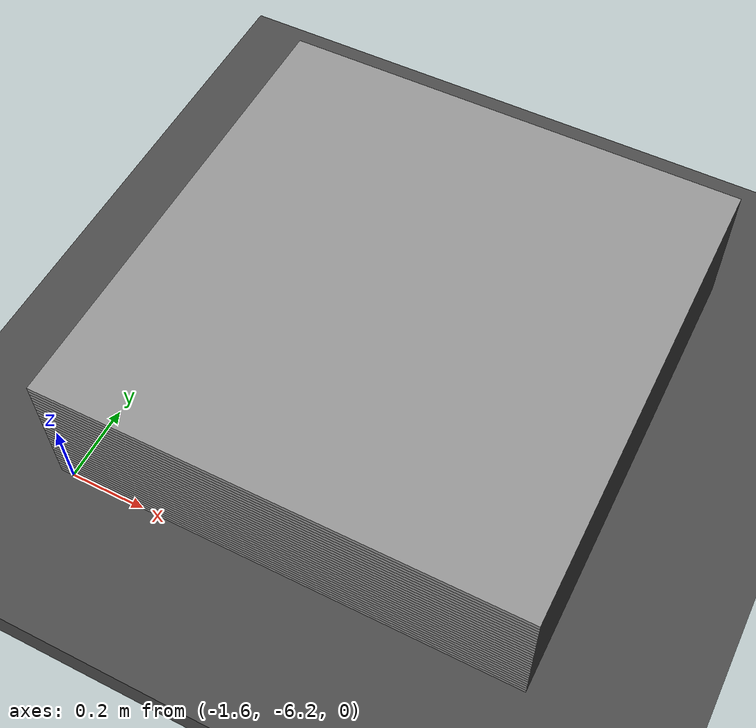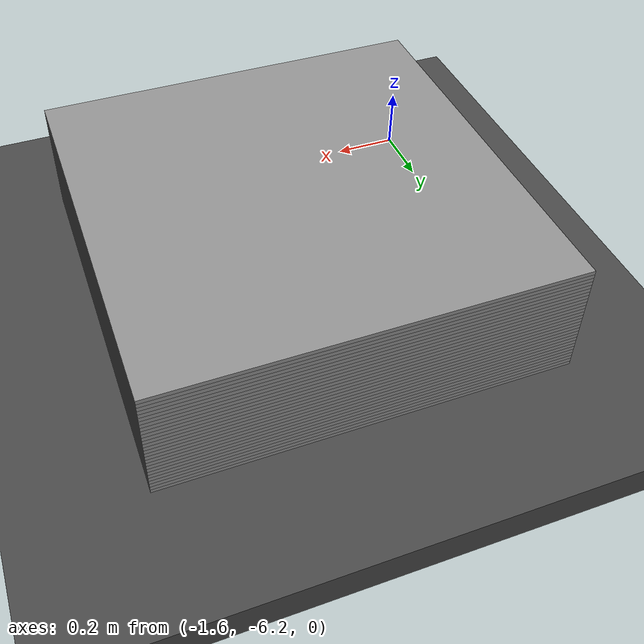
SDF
<sdf version="1.6">
 <world name="default">
  <light name="sun" type="directional">
   <pose>0 0 10 0 -0 0</pose>
   <diffuse>0.8 0.8 0.8 1</diffuse>
   <specular>0.2 0.2 0.2 1</specular>
   <attenuation>
    <range>1000</range>
    <constant>0.9</constant>
    <linear>0.01</linear>
    <quadratic>0.001</quadratic>
   </attenuation>
   <direction>-0.5 0.1 -0.9</direction>
  </light>
  <model name="ground_plane">
   <static>1</static>
   <link name="link">
    <collision name="collision">
     <geometry><plane><normal>0 0 1</normal><size>100 100</size></plane></geometry>
     <surface><friction><ode><mu>100</mu><mu2>50</mu2></ode></friction></surface>
    </collision>
    <visual name="visual">
     <cast_shadows>0</cast_shadows>
     <geometry><plane><normal>0 0 1</normal><size>100 100</size></plane></geometry>
     <material>
      <script><uri>file://media/materials/scripts/gazebo.material</uri><name>Gazebo/Grey</name></script>
     </material>
    </visual>
    <velocity_decay><linear>0</linear><angular>0</angular></velocity_decay>
   </link>
  </model>
  <physics name="default_physics" default="0" type="ode">
   <max_step_size>0.01</max_step_size>
   <real_time_factor>1</real_time_factor>
   <real_time_update_rate>100</real_time_update_rate>
  </physics>
  <scene><ambient>0.4 0.4 0.4 1</ambient><background>0.7 0.7 0.7 1</background><shadows>1</shadows></scene>
  <model name="asphalt_plane">
   <static>1</static>
   <link name="link">
    <collision name="collision"><geometry><box><size>20 20 0.1</size></box></geometry></collision>
    <visual name="visual">
     <cast_shadows>0</cast_shadows>
     <geometry><box><size>20 20 0.1</size></box></geometry>
     <material>
      <script>
       <uri>model://asphalt_plane/materials/scripts</uri>
       <uri>model://asphalt_plane/materials/textures</uri>
       <name>vrc/asphalt</name>
      </script>
     </material>
    </visual>
    <velocity_decay><linear>0</linear><angular>0</angular></velocity_decay>
   </link>
  </model>
  <gravity>0 0 -9.8</gravity>
  <magnetic_field>6e-06 2.3e-05 -4.2e-05</magnetic_field>
  <atmosphere type="adiabatic"/>
  <spherical_coordinates>
   <surface_model>EARTH_WGS84</surface_model>
   <latitude_deg>0</latitude_deg>
   <longitude_deg>0</longitude_deg>
   <elevation>0</elevation>
   <heading_deg>0</heading_deg>
  </spherical_coordinates>
  <model name="drywall_panel0">
   <static>0</static>
   <link name="link">
    <pose>0 0 0.6096 0 -0 0</pose>
    <collision name="collision">
     <geometry><box><size>1.2192 0.0127 1.2192</size></box></geometry>
     <surface><contact><ode><max_vel>0</max_vel><min_depth>0.001</min_depth></ode></contact></surface>
    </collision>
    <visual name="visual">
     <cast_shadows>0</cast_shadows>
     <geometry><box><size>1.2192 0.0127 1.2192</size></box></geometry>
     <material>
      <script>
       <uri>model://grey_wall/materials/scripts</uri>
       <uri>model://grey_wall/materials/textures</uri>
       <name>vrc/grey_wall</name>
      </script>
     </material>
    </visual>
    <inertial>
     <inertia><ixx>1</ixx><ixy>0</ixy><ixz>0</ixz><iyy>1</iyy><iyz>0</iyz><izz>1</izz></inertia>
     <mass>1</mass>
    </inertial>
   </link>
   <pose>-1 -5 0.055292 1.5708 -0 0</pose>
  </model>
  <model name="drywall_panel1">
   <static>0</static>
   <link name="link">
    <pose>0 0 0.6096 0 -0 0</pose>
    <collision name="collision">
     <geometry><box><size>1.2192 0.0127 1.2192</size></box></geometry>
     <surface><contact><ode><max_vel>0</max_vel><min_depth>0.001</min_depth></ode></contact></surface>
    </collision>
    <visual name="visual">
     <cast_shadows>0</cast_shadows>
     <geometry><box><size>1.2192 0.0127 1.2192</size></box></geometry>
     <material>
      <script>
       <uri>model://grey_wall/materials/scripts</uri>
       <uri>model://grey_wall/materials/textures</uri>
       <name>vrc/grey_wall</name>
      </script>
     </material>
    </visual>
    <inertial>
     <inertia><ixx>1</ixx><ixy>0</ixy><ixz>0</ixz><iyy>1</iyy><iyz>0</iyz><izz>1</izz></inertia>
     <mass>1</mass>
    </inertial>
   </link>
   <pose>-1 -5 0.067992 1.5708 -0 0</pose>
  </model>
  <model name="drywall_panel2">
   <static>0</static>
   <link name="link">
    <pose>0 0 0.6096 0 -0 0</pose>
    <collision name="collision">
     <geometry><box><size>1.2192 0.0127 1.2192</size></box></geometry>
     <surface><contact><ode><max_vel>0</max_vel><min_depth>0.001</min_depth></ode></contact></surface>
    </collision>
    <visual name="visual">
     <cast_shadows>0</cast_shadows>
     <geometry><box><size>1.2192 0.0127 1.2192</size></box></geometry>
     <material>
      <script>
       <uri>model://grey_wall/materials/scripts</uri>
       <uri>model://grey_wall/materials/textures</uri>
       <name>vrc/grey_wall</name>
      </script>
     </material>
    </visual>
    <inertial>
     <inertia><ixx>1</ixx><ixy>0</ixy><ixz>0</ixz><iyy>1</iyy><iyz>0</iyz><izz>1</izz></inertia>
     <mass>1</mass>
    </inertial>
   </link>
   <pose>-1 -5 0.080692 1.5708 -0 0</pose>
  </model>
  <model name="drywall_panel3">
   <static>0</static>
   <link name="link">
    <pose>0 0 0.6096 0 -0 0</pose>
    <collision name="collision">
     <geometry><box><size>1.2192 0.0127 1.2192</size></box></geometry>
     <surface><contact><ode><max_vel>0</max_vel><min_depth>0.001</min_depth></ode></contact></surface>
    </collision>
    <visual name="visual">
     <cast_shadows>0</cast_shadows>
     <geometry><box><size>1.2192 0.0127 1.2192</size></box></geometry>
     <material>
      <script>
       <uri>model://grey_wall/materials/scripts</uri>
       <uri>model://grey_wall/materials/textures</uri>
       <name>vrc/grey_wall</name>
      </script>
     </material>
    </visual>
    <inertial>
     <inertia><ixx>1</ixx><ixy>0</ixy><ixz>0</ixz><iyy>1</iyy><iyz>0</iyz><izz>1</izz></inertia>
     <mass>1</mass>
    </inertial>
   </link>
   <pose>-1 -5 0.093392 1.5708 -0 0</pose>
  </model>
  <model name="drywall_panel4">
   <static>0</static>
   <link name="link">
    <pose>0 0 0.6096 0 -0 0</pose>
    <collision name="collision">
     <geometry><box><size>1.2192 0.0127 1.2192</size></box></geometry>
     <surface><contact><ode><max_vel>0</max_vel><min_depth>0.001</min_depth></ode></contact></surface>
    </collision>
    <visual name="visual">
     <cast_shadows>0</cast_shadows>
     <geometry><box><size>1.2192 0.0127 1.2192</size></box></geometry>
     <material>
      <script>
       <uri>model://grey_wall/materials/scripts</uri>
       <uri>model://grey_wall/materials/textures</uri>
       <name>vrc/grey_wall</name>
      </script>
     </material>
    </visual>
    <inertial>
     <inertia><ixx>1</ixx><ixy>0</ixy><ixz>0</ixz><iyy>1</iyy><iyz>0</iyz><izz>1</izz></inertia>
     <mass>1</mass>
    </inertial>
   </link>
   <pose>-1 -5 0.106092 1.5708 -0 0</pose>
  </model>
  <model name="drywall_panel5">
   <static>0</static>
   <link name="link">
    <pose>0 0 0.6096 0 -0 0</pose>
    <collision name="collision">
     <geometry><box><size>1.2192 0.0127 1.2192</size></box></geometry>
     <surface><contact><ode><max_vel>0</max_vel><min_depth>0.001</min_depth></ode></contact></surface>
    </collision>
    <visual name="visual">
     <cast_shadows>0</cast_shadows>
     <geometry><box><size>1.2192 0.0127 1.2192</size></box></geometry>
     <material>
      <script>
       <uri>model://grey_wall/materials/scripts</uri>
       <uri>model://grey_wall/materials/textures</uri>
       <name>vrc/grey_wall</name>
      </script>
     </material>
    </visual>
    <inertial>
     <inertia><ixx>1</ixx><ixy>0</ixy><ixz>0</ixz><iyy>1</iyy><iyz>0</iyz><izz>1</izz></inertia>
     <mass>1</mass>
    </inertial>
   </link>
   <pose>-1 -5 0.118792 1.5708 -0 0</pose>
  </model>
  <model name="drywall_panel6">
   <static>0</static>
   <link name="link">
    <pose>0 0 0.6096 0 -0 0</pose>
    <collision name="collision">
     <geometry><box><size>1.2192 0.0127 1.2192</size></box></geometry>
     <surface><contact><ode><max_vel>0</max_vel><min_depth>0.001</min_depth></ode></contact></surface>
    </collision>
    <visual name="visual">
     <cast_shadows>0</cast_shadows>
     <geometry><box><size>1.2192 0.0127 1.2192</size></box></geometry>
     <material>
      <script>
       <uri>model://grey_wall/materials/scripts</uri>
       <uri>model://grey_wall/materials/textures</uri>
       <name>vrc/grey_wall</name>
      </script>
     </material>
    </visual>
    <inertial>
     <inertia><ixx>1</ixx><ixy>0</ixy><ixz>0</ixz><iyy>1</iyy><iyz>0</iyz><izz>1</izz></inertia>
     <mass>1</mass>
    </inertial>
   </link>
   <pose>-1 -5 0.131492 1.5708 -0 0</pose>
  </model>
  <model name="drywall_panel7">
   <static>0</static>
   <link name="link">
    <pose>0 0 0.6096 0 -0 0</pose>
    <collision name="collision">
     <geometry><box><size>1.2192 0.0127 1.2192</size></box></geometry>
     <surface><contact><ode><max_vel>0</max_vel><min_depth>0.001</min_depth></ode></contact></surface>
    </collision>
    <visual name="visual">
     <cast_shadows>0</cast_shadows>
     <geometry><box><size>1.2192 0.0127 1.2192</size></box></geometry>
     <material>
      <script>
       <uri>model://grey_wall/materials/scripts</uri>
       <uri>model://grey_wall/materials/textures</uri>
       <name>vrc/grey_wall</name>
      </script>
     </material>
    </visual>
    <inertial>
     <inertia><ixx>1</ixx><ixy>0</ixy><ixz>0</ixz><iyy>1</iyy><iyz>0</iyz><izz>1</izz></inertia>
     <mass>1</mass>
    </inertial>
   </link>
   <pose>-1 -5 0.144192 1.5708 -0 0</pose>
  </model>
  <model name="drywall_panel8">
   <static>0</static>
   <link name="link">
    <pose>0 0 0.6096 0 -0 0</pose>
    <collision name="collision">
     <geometry><box><size>1.2192 0.0127 1.2192</size></box></geometry>
     <surface><contact><ode><max_vel>0</max_vel><min_depth>0.001</min_depth></ode></contact></surface>
    </collision>
    <visual name="visual">
     <cast_shadows>0</cast_shadows>
     <geometry><box><size>1.2192 0.0127 1.2192</size></box></geometry>
     <material>
      <script>
       <uri>model://grey_wall/materials/scripts</uri>
       <uri>model://grey_wall/materials/textures</uri>
       <name>vrc/grey_wall</name>
      </script>
     </material>
    </visual>
    <inertial>
     <inertia><ixx>1</ixx><ixy>0</ixy><ixz>0</ixz><iyy>1</iyy><iyz>0</iyz><izz>1</izz></inertia>
     <mass>1</mass>
    </inertial>
   </link>
   <pose>-1 -5 0.156892 1.5708 -0 0</pose>
  </model>
  <model name="drywall_panel9">
   <static>0</static>
   <link name="link">
    <pose>0 0 0.6096 0 -0 0</pose>
    <collision name="collision">
     <geometry><box><size>1.2192 0.0127 1.2192</size></box></geometry>
     <surface><contact><ode><max_vel>0</max_vel><min_depth>0.001</min_depth></ode></contact></surface>
    </collision>
    <visual name="visual">
     <cast_shadows>0</cast_shadows>
     <geometry><box><size>1.2192 0.0127 1.2192</size></box></geometry>
     <material>
      <script>
       <uri>model://grey_wall/materials/scripts</uri>
       <uri>model://grey_wall/materials/textures</uri>
       <name>vrc/grey_wall</name>
      </script>
     </material>
    </visual>
    <inertial>
     <inertia><ixx>1</ixx><ixy>0</ixy><ixz>0</ixz><iyy>1</iyy><iyz>0</iyz><izz>1</izz></inertia>
     <mass>1</mass>
    </inertial>
   </link>
   <pose>-1 -5 0.169592 1.5708 -0 0</pose>
  </model>
  <model name="drywall_panel10">
   <static>0</static>
   <link name="link">
    <pose>0 0 0.6096 0 -0 0</pose>
    <collision name="collision">
     <geometry><box><size>1.2192 0.0127 1.2192</size></box></geometry>
     <surface><contact><ode><max_vel>0</max_vel><min_depth>0.001</min_depth></ode></contact></surface>
    </collision>
    <visual name="visual">
     <cast_shadows>0</cast_shadows>
     <geometry><box><size>1.2192 0.0127 1.2192</size></box></geometry>
     <material>
      <script>
       <uri>model://grey_wall/materials/scripts</uri>
       <uri>model://grey_wall/materials/textures</uri>
       <name>vrc/grey_wall</name>
      </script>
     </material>
    </visual>
    <inertial>
     <inertia><ixx>1</ixx><ixy>0</ixy><ixz>0</ixz><iyy>1</iyy><iyz>0</iyz><izz>1</izz></inertia>
     <mass>1</mass>
    </inertial>
   </link>
   <pose>-1 -5 0.182292 1.5708 -0 0</pose>
  </model>
  <model name="drywall_panel11">
   <static>0</static>
   <link name="link">
    <pose>0 0 0.6096 0 -0 0</pose>
    <collision name="collision">
     <geometry><box><size>1.2192 0.0127 1.2192</size></box></geometry>
     <surface><contact><ode><max_vel>0</max_vel><min_depth>0.001</min_depth></ode></contact></surface>
    </collision>
    <visual name="visual">
     <cast_shadows>0</cast_shadows>
     <geometry><box><size>1.2192 0.0127 1.2192</size></box></geometry>
     <material>
      <script>
       <uri>model://grey_wall/materials/scripts</uri>
       <uri>model://grey_wall/materials/textures</uri>
       <name>vrc/grey_wall</name>
      </script>
     </material>
    </visual>
    <inertial>
     <inertia><ixx>1</ixx><ixy>0</ixy><ixz>0</ixz><iyy>1</iyy><iyz>0</iyz><izz>1</izz></inertia>
     <mass>1</mass>
    </inertial>
   </link>
   <pose>-1 -5 0.194992 1.5708 -0 0</pose>
  </model>
  <model name="drywall_panel12">
   <static>0</static>
   <link name="link">
    <pose>0 0 0.6096 0 -0 0</pose>
    <collision name="collision">
     <geometry><box><size>1.2192 0.0127 1.2192</size></box></geometry>
     <surface><contact><ode><max_vel>0</max_vel><min_depth>0.001</min_depth></ode></contact></surface>
    </collision>
    <visual name="visual">
     <cast_shadows>0</cast_shadows>
     <geometry><box><size>1.2192 0.0127 1.2192</size></box></geometry>
     <material>
      <script>
       <uri>model://grey_wall/materials/scripts</uri>
       <uri>model://grey_wall/materials/textures</uri>
       <name>vrc/grey_wall</name>
      </script>
     </material>
    </visual>
    <inertial>
     <inertia><ixx>1</ixx><ixy>0</ixy><ixz>0</ixz><iyy>1</iyy><iyz>0</iyz><izz>1</izz></inertia>
     <mass>1</mass>
    </inertial>
   </link>
   <pose>-1 -5 0.207692 1.5708 -0 0</pose>
  </model>
  <model name="drywall_panel13">
   <static>0</static>
   <link name="link">
    <pose>0 0 0.6096 0 -0 0</pose>
    <collision name="collision">
     <geometry><box><size>1.2192 0.0127 1.2192</size></box></geometry>
     <surface><contact><ode><max_vel>0</max_vel><min_depth>0.001</min_depth></ode></contact></surface>
    </collision>
    <visual name="visual">
     <cast_shadows>0</cast_shadows>
     <geometry><box><size>1.2192 0.0127 1.2192</size></box></geometry>
     <material>
      <script>
       <uri>model://grey_wall/materials/scripts</uri>
       <uri>model://grey_wall/materials/textures</uri>
       <name>vrc/grey_wall</name>
      </script>
     </material>
    </visual>
    <inertial>
     <inertia><ixx>1</ixx><ixy>0</ixy><ixz>0</ixz><iyy>1</iyy><iyz>0</iyz><izz>1</izz></inertia>
     <mass>1</mass>
    </inertial>
   </link>
   <pose>-1 -5 0.220392 1.5708 -0 0</pose>
  </model>
  <model name="drywall_panel14">
   <static>0</static>
   <link name="link">
    <pose>0 0 0.6096 0 -0 0</pose>
    <collision name="collision">
     <geometry><box><size>1.2192 0.0127 1.2192</size></box></geometry>
     <surface><contact><ode><max_vel>0</max_vel><min_depth>0.001</min_depth></ode></contact></surface>
    </collision>
    <visual name="visual">
     <cast_shadows>0</cast_shadows>
     <geometry><box><size>1.2192 0.0127 1.2192</size></box></geometry>
     <material>
      <script>
       <uri>model://grey_wall/materials/scripts</uri>
       <uri>model://grey_wall/materials/textures</uri>
       <name>vrc/grey_wall</name>
      </script>
     </material>
    </visual>
    <inertial>
     <inertia><ixx>1</ixx><ixy>0</ixy><ixz>0</ixz><iyy>1</iyy><iyz>0</iyz><izz>1</izz></inertia>
     <mass>1</mass>
    </inertial>
   </link>
   <pose>-1 -5 0.233092 1.5708 -0 0</pose>
  </model>
  <model name="drywall_panel15">
   <static>0</static>
   <link name="link">
    <pose>0 0 0.6096 0 -0 0</pose>
    <collision name="collision">
     <geometry><box><size>1.2192 0.0127 1.2192</size></box></geometry>
     <surface><contact><ode><max_vel>0</max_vel><min_depth>0.001</min_depth></ode></contact></surface>
    </collision>
    <visual name="visual">
     <cast_shadows>0</cast_shadows>
     <geometry><box><size>1.2192 0.0127 1.2192</size></box></geometry>
     <material>
      <script>
       <uri>model://grey_wall/materials/scripts</uri>
       <uri>model://grey_wall/materials/textures</uri>
       <name>vrc/grey_wall</name>
      </script>
     </material>
    </visual>
    <inertial>
     <inertia><ixx>1</ixx><ixy>0</ixy><ixz>0</ixz><iyy>1</iyy><iyz>0</iyz><izz>1</izz></inertia>
     <mass>1</mass>
    </inertial>
   </link>
   <pose>-1 -5 0.245792 1.5708 -0 0</pose>
  </model>
  <model name="drywall_panel16">
   <static>0</static>
   <link name="link">
    <pose>0 0 0.6096 0 -0 0</pose>
    <collision name="collision">
     <geometry><box><size>1.2192 0.0127 1.2192</size></box></geometry>
     <surface><contact><ode><max_vel>0</max_vel><min_depth>0.001</min_depth></ode></contact></surface>
    </collision>
    <visual name="visual">
     <cast_shadows>0</cast_shadows>
     <geometry><box><size>1.2192 0.0127 1.2192</size></box></geometry>
     <material>
      <script>
       <uri>model://grey_wall/materials/scripts</uri>
       <uri>model://grey_wall/materials/textures</uri>
       <name>vrc/grey_wall</name>
      </script>
     </material>
    </visual>
    <inertial>
     <inertia><ixx>1</ixx><ixy>0</ixy><ixz>0</ixz><iyy>1</iyy><iyz>0</iyz><izz>1</izz></inertia>
     <mass>1</mass>
    </inertial>
   </link>
   <pose>-1 -5 0.258492 1.5708 -0 0</pose>
  </model>
  <model name="drywall_panel17">
   <static>0</static>
   <link name="link">
    <pose>0 0 0.6096 0 -0 0</pose>
    <collision name="collision">
     <geometry><box><size>1.2192 0.0127 1.2192</size></box></geometry>
     <surface><contact><ode><max_vel>0</max_vel><min_depth>0.001</min_depth></ode></contact></surface>
    </collision>
    <visual name="visual">
     <cast_shadows>0</cast_shadows>
     <geometry><box><size>1.2192 0.0127 1.2192</size></box></geometry>
     <material>
      <script>
       <uri>model://grey_wall/materials/scripts</uri>
       <uri>model://grey_wall/materials/textures</uri>
       <name>vrc/grey_wall</name>
      </script>
     </material>
    </visual>
    <inertial>
     <inertia><ixx>1</ixx><ixy>0</ixy><ixz>0</ixz><iyy>1</iyy><iyz>0</iyz><izz>1</izz></inertia>
     <mass>1</mass>
    </inertial>
   </link>
   <pose>-1 -5 0.271192 1.5708 -0 0</pose>
  </model>
  <model name="drywall_panel18">
   <static>0</static>
   <link name="link">
    <pose>0 0 0.6096 0 -0 0</pose>
    <collision name="collision">
     <geometry><box><size>1.2192 0.0127 1.2192</size></box></geometry>
     <surface><contact><ode><max_vel>0</max_vel><min_depth>0.001</min_depth></ode></contact></surface>
    </collision>
    <visual name="visual">
     <cast_shadows>0</cast_shadows>
     <geometry><box><size>1.2192 0.0127 1.2192</size></box></geometry>
     <material>
      <script>
       <uri>model://grey_wall/materials/scripts</uri>
       <uri>model://grey_wall/materials/textures</uri>
       <name>vrc/grey_wall</name>
      </script>
     </material>
    </visual>
    <inertial>
     <inertia><ixx>1</ixx><ixy>0</ixy><ixz>0</ixz><iyy>1</iyy><iyz>0</iyz><izz>1</izz></inertia>
     <mass>1</mass>
    </inertial>
   </link>
   <pose>-1 -5 0.283892 1.5708 -0 0</pose>
  </model>
  <model name="drywall_panel19">
   <static>0</static>
   <link name="link">
    <pose>0 0 0.6096 0 -0 0</pose>
    <collision name="collision">
     <geometry><box><size>1.2192 0.0127 1.2192</size></box></geometry>
     <surface><contact><ode><max_vel>0</max_vel><min_depth>0.001</min_depth></ode></contact></surface>
    </collision>
    <visual name="visual">
     <cast_shadows>0</cast_shadows>
     <geometry><box><size>1.2192 0.0127 1.2192</size></box></geometry>
     <material>
      <script>
       <uri>model://grey_wall/materials/scripts</uri>
       <uri>model://grey_wall/materials/textures</uri>
       <name>vrc/grey_wall</name>
      </script>
     </material>
    </visual>
    <inertial>
     <inertia><ixx>1</ixx><ixy>0</ixy><ixz>0</ixz><iyy>1</iyy><iyz>0</iyz><izz>1</izz></inertia>
     <mass>1</mass>
    </inertial>
   </link>
   <pose>-1 -5 0.296592 1.5708 -0 0</pose>
  </model>
  <model name="drywall_panel20">
   <static>0</static>
   <link name="link">
    <pose>0 0 0.6096 0 -0 0</pose>
    <collision name="collision">
     <geometry><box><size>1.2192 0.0127 1.2192</size></box></geometry>
     <surface><contact><ode><max_vel>0</max_vel><min_depth>0.001</min_depth></ode></contact></surface>
    </collision>
    <visual name="visual">
     <cast_shadows>0</cast_shadows>
     <geometry><box><size>1.2192 0.0127 1.2192</size></box></geometry>
     <material>
      <script>
       <uri>model://grey_wall/materials/scripts</uri>
       <uri>model://grey_wall/materials/textures</uri>
       <name>vrc/grey_wall</name>
      </script>
     </material>
    </visual>
    <inertial>
     <inertia><ixx>1</ixx><ixy>0</ixy><ixz>0</ixz><iyy>1</iyy><iyz>0</iyz><izz>1</izz></inertia>
     <mass>1</mass>
    </inertial>
   </link>
   <pose>-1 -5 0.309292 1.5708 -0 0</pose>
  </model>
  <model name="drywall_panel21">
   <static>0</static>
   <link name="link">
    <pose>0 0 0.6096 0 -0 0</pose>
    <collision name="collision">
     <geometry><box><size>1.2192 0.0127 1.2192</size></box></geometry>
     <surface><contact><ode><max_vel>0</max_vel><min_depth>0.001</min_depth></ode></contact></surface>
    </collision>
    <visual name="visual">
     <cast_shadows>0</cast_shadows>
     <geometry><box><size>1.2192 0.0127 1.2192</size></box></geometry>
     <material>
      <script>
       <uri>model://grey_wall/materials/scripts</uri>
       <uri>model://grey_wall/materials/textures</uri>
       <name>vrc/grey_wall</name>
      </script>
     </material>
    </visual>
    <inertial>
     <inertia><ixx>1</ixx><ixy>0</ixy><ixz>0</ixz><iyy>1</iyy><iyz>0</iyz><izz>1</izz></inertia>
     <mass>1</mass>
    </inertial>
   </link>
   <pose>-1 -5 0.321992 1.5708 -0 0</pose>
  </model>
  <model name="drywall_panel22">
   <static>0</static>
   <link name="link">
    <pose>0 0 0.6096 0 -0 0</pose>
    <collision name="collision">
     <geometry><box><size>1.2192 0.0127 1.2192</size></box></geometry>
     <surface><contact><ode><max_vel>0</max_vel><min_depth>0.001</min_depth></ode></contact></surface>
    </collision>
    <visual name="visual">
     <cast_shadows>0</cast_shadows>
     <geometry><box><size>1.2192 0.0127 1.2192</size></box></geometry>
     <material>
      <script>
       <uri>model://grey_wall/materials/scripts</uri>
       <uri>model://grey_wall/materials/textures</uri>
       <name>vrc/grey_wall</name>
      </script>
     </material>
    </visual>
    <inertial>
     <inertia><ixx>1</ixx><ixy>0</ixy><ixz>0</ixz><iyy>1</iyy><iyz>0</iyz><izz>1</izz></inertia>
     <mass>1</mass>
    </inertial>
   </link>
   <pose>-1 -5 0.334692 1.5708 -0 0</pose>
  </model>
  <model name="drywall_panel23">
   <static>0</static>
   <link name="link">
    <pose>0 0 0.6096 0 -0 0</pose>
    <collision name="collision">
     <geometry><box><size>1.2192 0.0127 1.2192</size></box></geometry>
     <surface><contact><ode><max_vel>0</max_vel><min_depth>0.001</min_depth></ode></contact></surface>
    </collision>
    <visual name="visual">
     <cast_shadows>0</cast_shadows>
     <geometry><box><size>1.2192 0.0127 1.2192</size></box></geometry>
     <material>
      <script>
       <uri>model://grey_wall/materials/scripts</uri>
       <uri>model://grey_wall/materials/textures</uri>
       <name>vrc/grey_wall</name>
      </script>
     </material>
    </visual>
    <inertial>
     <inertia><ixx>1</ixx><ixy>0</ixy><ixz>0</ixz><iyy>1</iyy><iyz>0</iyz><izz>1</izz></inertia>
     <mass>1</mass>
    </inertial>
   </link>
   <pose>-1 -5 0.347392 1.5708 -0 0</pose>
  </model>
  <model name="drywall_panel24">
   <static>0</static>
   <link name="link">
    <pose>0 0 0.6096 0 -0 0</pose>
    <collision name="collision">
     <geometry><box><size>1.2192 0.0127 1.2192</size></box></geometry>
     <surface><contact><ode><max_vel>0</max_vel><min_depth>0.001</min_depth></ode></contact></surface>
    </collision>
    <visual name="visual">
     <cast_shadows>0</cast_shadows>
     <geometry><box><size>1.2192 0.0127 1.2192</size></box></geometry>
     <material>
      <script>
       <uri>model://grey_wall/materials/scripts</uri>
       <uri>model://grey_wall/materials/textures</uri>
       <name>vrc/grey_wall</name>
      </script>
     </material>
    </visual>
    <inertial>
     <inertia><ixx>1</ixx><ixy>0</ixy><ixz>0</ixz><iyy>1</iyy><iyz>0</iyz><izz>1</izz></inertia>
     <mass>1</mass>
    </inertial>
   </link>
   <pose>-1 -5 0.360092 1.5708 -0 0</pose>
  </model>
  <model name="drywall_panel25">
   <static>0</static>
   <link name="link">
    <pose>0 0 0.6096 0 -0 0</pose>
    <collision name="collision">
     <geometry><box><size>1.2192 0.0127 1.2192</size></box></geometry>
     <surface><contact><ode><max_vel>0</max_vel><min_depth>0.001</min_depth></ode></contact></surface>
    </collision>
    <visual name="visual">
     <cast_shadows>0</cast_shadows>
     <geometry><box><size>1.2192 0.0127 1.2192</size></box></geometry>
     <material>
      <script>
       <uri>model://grey_wall/materials/scripts</uri>
       <uri>model://grey_wall/materials/textures</uri>
       <name>vrc/grey_wall</name>
      </script>
     </material>
    </visual>
    <inertial>
     <inertia><ixx>1</ixx><ixy>0</ixy><ixz>0</ixz><iyy>1</iyy><iyz>0</iyz><izz>1</izz></inertia>
     <mass>1</mass>
    </inertial>
   </link>
   <pose>-1 -5 0.372792 1.5708 -0 0</pose>
  </model>
  <model name="drywall_panel26">
   <static>0</static>
   <link name="link">
    <pose>0 0 0.6096 0 -0 0</pose>
    <collision name="collision">
     <geometry><box><size>1.2192 0.0127 1.2192</size></box></geometry>
     <surface><contact><ode><max_vel>0</max_vel><min_depth>0.001</min_depth></ode></contact></surface>
    </collision>
    <visual name="visual">
     <cast_shadows>0</cast_shadows>
     <geometry><box><size>1.2192 0.0127 1.2192</size></box></geometry>
     <material>
      <script>
       <uri>model://grey_wall/materials/scripts</uri>
       <uri>model://grey_wall/materials/textures</uri>
       <name>vrc/grey_wall</name>
      </script>
     </material>
    </visual>
    <inertial>
     <inertia><ixx>1</ixx><ixy>0</ixy><ixz>0</ixz><iyy>1</iyy><iyz>0</iyz><izz>1</izz></inertia>
     <mass>1</mass>
    </inertial>
   </link>
   <pose>-1 -5 0.385492 1.5708 -0 0</pose>
  </model>
  <model name="drywall_panel27">
   <static>0</static>
   <link name="link">
    <pose>0 0 0.6096 0 -0 0</pose>
    <collision name="collision">
     <geometry><box><size>1.2192 0.0127 1.2192</size></box></geometry>
     <surface><contact><ode><max_vel>0</max_vel><min_depth>0.001</min_depth></ode></contact></surface>
    </collision>
    <visual name="visual">
     <cast_shadows>0</cast_shadows>
     <geometry><box><size>1.2192 0.0127 1.2192</size></box></geometry>
     <material>
      <script>
       <uri>model://grey_wall/materials/scripts</uri>
       <uri>model://grey_wall/materials/textures</uri>
       <name>vrc/grey_wall</name>
      </script>
     </material>
    </visual>
    <inertial>
     <inertia><ixx>1</ixx><ixy>0</ixy><ixz>0</ixz><iyy>1</iyy><iyz>0</iyz><izz>1</izz></inertia>
     <mass>1</mass>
    </inertial>
   </link>
   <pose>-1 -5 0.398192 1.5708 -0 0</pose>
  </model>
  <model name="drywall_panel28">
   <static>0</static>
   <link name="link">
    <pose>0 0 0.6096 0 -0 0</pose>
    <collision name="collision">
     <geometry><box><size>1.2192 0.0127 1.2192</size></box></geometry>
     <surface><contact><ode><max_vel>0</max_vel><min_depth>0.001</min_depth></ode></contact></surface>
    </collision>
    <visual name="visual">
     <cast_shadows>0</cast_shadows>
     <geometry><box><size>1.2192 0.0127 1.2192</size></box></geometry>
     <material>
      <script>
       <uri>model://grey_wall/materials/scripts</uri>
       <uri>model://grey_wall/materials/textures</uri>
       <name>vrc/grey_wall</name>
      </script>
     </material>
    </visual>
    <inertial>
     <inertia><ixx>1</ixx><ixy>0</ixy><ixz>0</ixz><iyy>1</iyy><iyz>0</iyz><izz>1</izz></inertia>
     <mass>1</mass>
    </inertial>
   </link>
   <pose>-1 -5 0.410892 1.5708 -0 0</pose>
  </model>
 </world>
</sdf>
